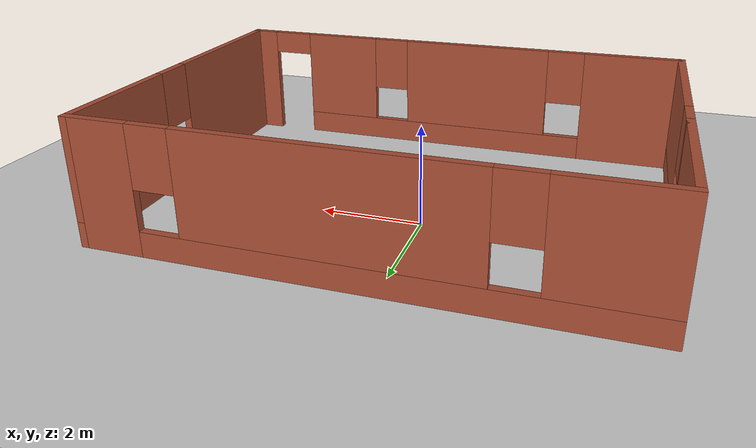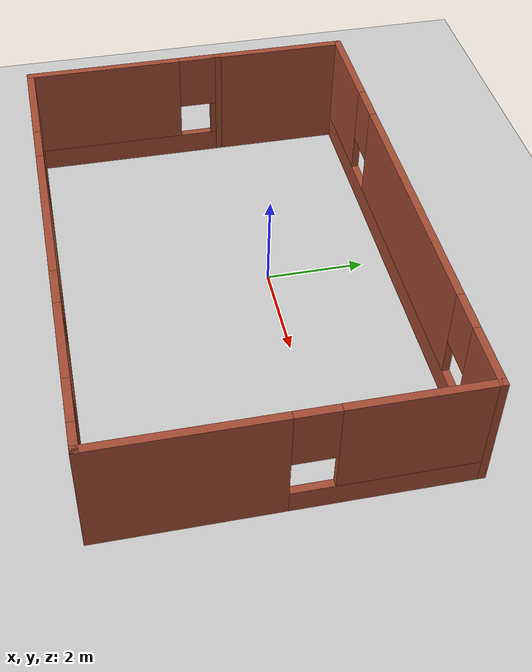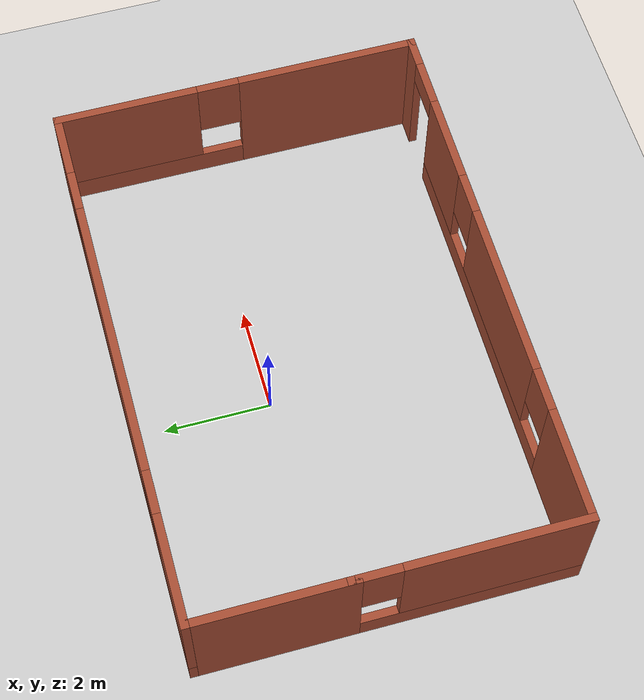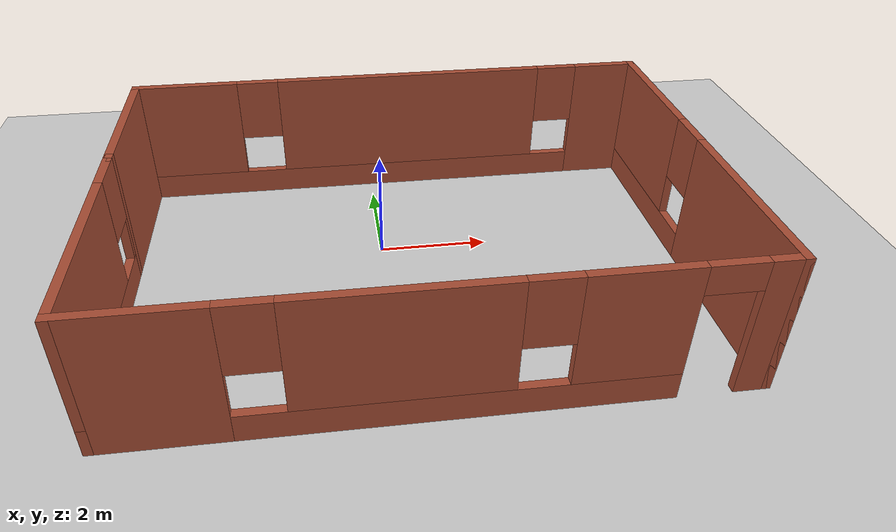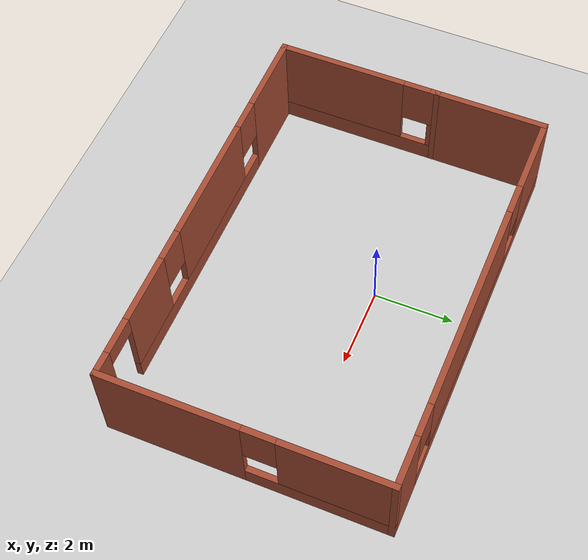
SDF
<sdf version="1.7">
 <world name="default">
  <light name="sun" type="directional">
   <pose>0 0 10 0 -0 0</pose>
   <diffuse>0.8 0.8 0.8 1</diffuse>
   <specular>0.2 0.2 0.2 1</specular>
   <attenuation>
    <range>1000</range>
    <constant>0.9</constant>
    <linear>0.01</linear>
    <quadratic>0.001</quadratic>
   </attenuation>
   <direction>-0.5 0.1 -0.9</direction>
   <spot><inner_angle>0</inner_angle><outer_angle>0</outer_angle><falloff>0</falloff></spot>
  </light>
  <model name="ground_plane">
   <static>1</static>
   <link name="link">
    <collision name="collision">
     <geometry><plane><normal>0 0 1</normal><size>100 100</size></plane></geometry>
     <surface><friction><ode><mu>100</mu><mu2>50</mu2></ode></friction></surface>
    </collision>
    <visual name="visual">
     <cast_shadows>0</cast_shadows>
     <geometry><plane><normal>0 0 1</normal><size>100 100</size></plane></geometry>
     <material>
      <script><uri>file://media/materials/scripts/gazebo.material</uri><name>Gazebo/Grey</name></script>
     </material>
    </visual>
   </link>
  </model>
  <gravity>0 0 -9.8</gravity>
  <magnetic_field>6e-06 2.3e-05 -4.2e-05</magnetic_field>
  <atmosphere type="adiabatic"/>
  <physics type="ode">
   <max_step_size>0.001</max_step_size>
   <real_time_factor>1</real_time_factor>
   <real_time_update_rate>1000</real_time_update_rate>
  </physics>
  <scene><ambient>0.4 0.4 0.4 1</ambient><background>0.7 0.7 0.7 1</background><shadows>1</shadows></scene>
  <audio><device>default</device></audio>
  <spherical_coordinates>
   <surface_model>EARTH_WGS84</surface_model>
   <latitude_deg>0</latitude_deg>
   <longitude_deg>0</longitude_deg>
   <elevation>0</elevation>
   <heading_deg>0</heading_deg>
  </spherical_coordinates>
  <model name="building_editor">
   <pose>0.48419 -0.86699 0 0 -0 0</pose>
   <link name="Wall_16">
    <pose>-5.05 -1.375 0 0 -0 -1.5708</pose>
    <visual name="Wall_16_Visual_0">
     <pose>-2.05619 0 1.25 0 -0 0</pose>
     <geometry><box><size>0.137612 0.15 2.5</size></box></geometry>
     <material>
      <script><uri>file://media/materials/scripts/gazebo.material</uri><name>Gazebo/Bricks</name></script>
      <ambient>1 1 1 1</ambient>
     </material>
     <meta><layer>0</layer></meta>
    </visual>
    <collision name="Wall_16_Collision_0">
     <geometry><box><size>0.137612 0.15 2.5</size></box></geometry>
     <pose>-2.05619 0 1.25 0 -0 0</pose>
    </collision>
    <visual name="Wall_16_Visual_1">
     <pose>0.068806 0 0.25 0 -0 0</pose>
     <geometry><box><size>4.11239 0.15 0.5</size></box></geometry>
     <material>
      <script><uri>file://media/materials/scripts/gazebo.material</uri><name>Gazebo/Bricks</name></script>
      <ambient>1 1 1 1</ambient>
     </material>
     <meta><layer>0</layer></meta>
    </visual>
    <collision name="Wall_16_Collision_1">
     <geometry><box><size>4.11239 0.15 0.5</size></box></geometry>
     <pose>0.068806 0 0.25 0 -0 0</pose>
    </collision>
    <visual name="Wall_16_Visual_2">
     <pose>0.468806 0 1.5 0 -0 0</pose>
     <geometry><box><size>3.31239 0.15 2</size></box></geometry>
     <material>
      <script><uri>file://media/materials/scripts/gazebo.material</uri><name>Gazebo/Bricks</name></script>
      <ambient>1 1 1 1</ambient>
     </material>
     <meta><layer>0</layer></meta>
    </visual>
    <collision name="Wall_16_Collision_2">
     <geometry><box><size>3.31239 0.15 2</size></box></geometry>
     <pose>0.468806 0 1.5 0 -0 0</pose>
    </collision>
    <visual name="Wall_16_Visual_3">
     <pose>-1.58739 0 1.9 0 -0 0</pose>
     <geometry><box><size>0.8 0.15 1.2</size></box></geometry>
     <material>
      <script><uri>file://media/materials/scripts/gazebo.material</uri><name>Gazebo/Bricks</name></script>
      <ambient>1 1 1 1</ambient>
     </material>
     <meta><layer>0</layer></meta>
    </visual>
    <collision name="Wall_16_Collision_3">
     <geometry><box><size>0.8 0.15 1.2</size></box></geometry>
     <pose>-1.58739 0 1.9 0 -0 0</pose>
    </collision>
   </link>
   <link name="Wall_17">
    <pose>0 -3.425 0 0 -0 0</pose>
    <visual name="Wall_17_Visual_0">
     <pose>-4.07314 0 1.25 0 -0 0</pose>
     <geometry><box><size>2.10371 0.15 2.5</size></box></geometry>
     <material>
      <script><uri>file://media/materials/scripts/gazebo.material</uri><name>Gazebo/Bricks</name></script>
      <ambient>1 1 1 1</ambient>
     </material>
     <meta><layer>0</layer></meta>
    </visual>
    <collision name="Wall_17_Collision_0">
     <geometry><box><size>2.10371 0.15 2.5</size></box></geometry>
     <pose>-4.07314 0 1.25 0 -0 0</pose>
    </collision>
    <visual name="Wall_17_Visual_1">
     <pose>4.81923 0 1.25 0 -0 0</pose>
     <geometry><box><size>0.61154 0.15 2.5</size></box></geometry>
     <material>
      <script><uri>file://media/materials/scripts/gazebo.material</uri><name>Gazebo/Bricks</name></script>
      <ambient>1 1 1 1</ambient>
     </material>
     <meta><layer>0</layer></meta>
    </visual>
    <collision name="Wall_17_Collision_1">
     <geometry><box><size>0.61154 0.15 2.5</size></box></geometry>
     <pose>4.81923 0 1.25 0 -0 0</pose>
    </collision>
    <visual name="Wall_17_Visual_2">
     <pose>0.296087 0 0.25 0 -0 0</pose>
     <geometry><box><size>6.63475 0.15 0.5</size></box></geometry>
     <material>
      <script><uri>file://media/materials/scripts/gazebo.material</uri><name>Gazebo/Bricks</name></script>
      <ambient>1 1 1 1</ambient>
     </material>
     <meta><layer>0</layer></meta>
    </visual>
    <collision name="Wall_17_Collision_2">
     <geometry><box><size>6.63475 0.15 0.5</size></box></geometry>
     <pose>0.296087 0 0.25 0 -0 0</pose>
    </collision>
    <visual name="Wall_17_Visual_3">
     <pose>-0.562662 0 1.5 0 -0 0</pose>
     <geometry><box><size>3.31725 0.15 2</size></box></geometry>
     <material>
      <script><uri>file://media/materials/scripts/gazebo.material</uri><name>Gazebo/Bricks</name></script>
      <ambient>1 1 1 1</ambient>
     </material>
     <meta><layer>0</layer></meta>
    </visual>
    <collision name="Wall_17_Collision_3">
     <geometry><box><size>3.31725 0.15 2</size></box></geometry>
     <pose>-0.562662 0 1.5 0 -0 0</pose>
    </collision>
    <visual name="Wall_17_Visual_4">
     <pose>2.75471 0 1.5 0 -0 0</pose>
     <geometry><box><size>1.7175 0.15 2</size></box></geometry>
     <material>
      <script><uri>file://media/materials/scripts/gazebo.material</uri><name>Gazebo/Bricks</name></script>
      <ambient>1 1 1 1</ambient>
     </material>
     <meta><layer>0</layer></meta>
    </visual>
    <collision name="Wall_17_Collision_4">
     <geometry><box><size>1.7175 0.15 2</size></box></geometry>
     <pose>2.75471 0 1.5 0 -0 0</pose>
    </collision>
    <visual name="Wall_17_Visual_5">
     <pose>-2.62129 0 1.9 0 -0 0</pose>
     <geometry><box><size>0.8 0.15 1.2</size></box></geometry>
     <material>
      <script><uri>file://media/materials/scripts/gazebo.material</uri><name>Gazebo/Bricks</name></script>
      <ambient>1 1 1 1</ambient>
     </material>
     <meta><layer>0</layer></meta>
    </visual>
    <collision name="Wall_17_Collision_5">
     <geometry><box><size>0.8 0.15 1.2</size></box></geometry>
     <pose>-2.62129 0 1.9 0 -0 0</pose>
    </collision>
    <visual name="Wall_17_Visual_6">
     <pose>1.49596 0 1.9 0 -0 0</pose>
     <geometry><box><size>0.8 0.15 1.2</size></box></geometry>
     <material>
      <script><uri>file://media/materials/scripts/gazebo.material</uri><name>Gazebo/Bricks</name></script>
      <ambient>1 1 1 1</ambient>
     </material>
     <meta><layer>0</layer></meta>
    </visual>
    <collision name="Wall_17_Collision_6">
     <geometry><box><size>0.8 0.15 1.2</size></box></geometry>
     <pose>1.49596 0 1.9 0 -0 0</pose>
    </collision>
    <visual name="Wall_17_Visual_7">
     <pose>4.06346 0 2.25 0 -0 0</pose>
     <geometry><box><size>0.9 0.15 0.5</size></box></geometry>
     <material>
      <script><uri>file://media/materials/scripts/gazebo.material</uri><name>Gazebo/Bricks</name></script>
      <ambient>1 1 1 1</ambient>
     </material>
     <meta><layer>0</layer></meta>
    </visual>
    <collision name="Wall_17_Collision_7">
     <geometry><box><size>0.9 0.15 0.5</size></box></geometry>
     <pose>4.06346 0 2.25 0 -0 0</pose>
    </collision>
   </link>
   <link name="Wall_18">
    <pose>5.05 0 0 0 -0 1.5708</pose>
    <visual name="Wall_18_Visual_0">
     <pose>-1.76285 0 1.25 0 -0 0</pose>
     <geometry><box><size>3.4743 0.15 2.5</size></box></geometry>
     <material>
      <script><uri>file://media/materials/scripts/gazebo.material</uri><name>Gazebo/Bricks</name></script>
      <ambient>1 1 1 1</ambient>
     </material>
     <meta><layer>0</layer></meta>
    </visual>
    <collision name="Wall_18_Collision_0">
     <geometry><box><size>3.4743 0.15 2.5</size></box></geometry>
     <pose>-1.76285 0 1.25 0 -0 0</pose>
    </collision>
    <visual name="Wall_18_Visual_1">
     <pose>1.73715 0 0.25 0 -0 0</pose>
     <geometry><box><size>3.5257 0.15 0.5</size></box></geometry>
     <material>
      <script><uri>file://media/materials/scripts/gazebo.material</uri><name>Gazebo/Bricks</name></script>
      <ambient>1 1 1 1</ambient>
     </material>
     <meta><layer>0</layer></meta>
    </visual>
    <collision name="Wall_18_Collision_1">
     <geometry><box><size>3.5257 0.15 0.5</size></box></geometry>
     <pose>1.73715 0 0.25 0 -0 0</pose>
    </collision>
    <visual name="Wall_18_Visual_2">
     <pose>2.13715 0 1.5 0 -0 0</pose>
     <geometry><box><size>2.7257 0.15 2</size></box></geometry>
     <material>
      <script><uri>file://media/materials/scripts/gazebo.material</uri><name>Gazebo/Bricks</name></script>
      <ambient>1 1 1 1</ambient>
     </material>
     <meta><layer>0</layer></meta>
    </visual>
    <collision name="Wall_18_Collision_2">
     <geometry><box><size>2.7257 0.15 2</size></box></geometry>
     <pose>2.13715 0 1.5 0 -0 0</pose>
    </collision>
    <visual name="Wall_18_Visual_3">
     <pose>0.374302 0 1.9 0 -0 0</pose>
     <geometry><box><size>0.8 0.15 1.2</size></box></geometry>
     <material>
      <script><uri>file://media/materials/scripts/gazebo.material</uri><name>Gazebo/Bricks</name></script>
      <ambient>1 1 1 1</ambient>
     </material>
     <meta><layer>0</layer></meta>
    </visual>
    <collision name="Wall_18_Collision_3">
     <geometry><box><size>0.8 0.15 1.2</size></box></geometry>
     <pose>0.374302 0 1.9 0 -0 0</pose>
    </collision>
   </link>
   <link name="Wall_19">
    <pose>0 3.425 0 0 -0 3.14159</pose>
    <visual name="Wall_19_Visual_0">
     <pose>-4.48197 0 1.25 0 -0 0</pose>
     <geometry><box><size>1.28607 0.15 2.5</size></box></geometry>
     <material>
      <script><uri>file://media/materials/scripts/gazebo.material</uri><name>Gazebo/Bricks</name></script>
      <ambient>1 1 1 1</ambient>
     </material>
     <meta><layer>0</layer></meta>
    </visual>
    <collision name="Wall_19_Collision_0">
     <geometry><box><size>1.28607 0.15 2.5</size></box></geometry>
     <pose>-4.48197 0 1.25 0 -0 0</pose>
    </collision>
    <visual name="Wall_19_Visual_1">
     <pose>0.643033 0 0.25 0 -0 0</pose>
     <geometry><box><size>8.96393 0.15 0.5</size></box></geometry>
     <material>
      <script><uri>file://media/materials/scripts/gazebo.material</uri><name>Gazebo/Bricks</name></script>
      <ambient>1 1 1 1</ambient>
     </material>
     <meta><layer>0</layer></meta>
    </visual>
    <collision name="Wall_19_Collision_1">
     <geometry><box><size>8.96393 0.15 0.5</size></box></geometry>
     <pose>0.643033 0 0.25 0 -0 0</pose>
    </collision>
    <visual name="Wall_19_Visual_2">
     <pose>-0.374128 0 1.5 0 -0 0</pose>
     <geometry><box><size>5.32961 0.15 2</size></box></geometry>
     <material>
      <script><uri>file://media/materials/scripts/gazebo.material</uri><name>Gazebo/Bricks</name></script>
      <ambient>1 1 1 1</ambient>
     </material>
     <meta><layer>0</layer></meta>
    </visual>
    <collision name="Wall_19_Collision_2">
     <geometry><box><size>5.32961 0.15 2</size></box></geometry>
     <pose>-0.374128 0 1.5 0 -0 0</pose>
    </collision>
    <visual name="Wall_19_Visual_3">
     <pose>4.10784 0 1.5 0 -0 0</pose>
     <geometry><box><size>2.03432 0.15 2</size></box></geometry>
     <material>
      <script><uri>file://media/materials/scripts/gazebo.material</uri><name>Gazebo/Bricks</name></script>
      <ambient>1 1 1 1</ambient>
     </material>
     <meta><layer>0</layer></meta>
    </visual>
    <collision name="Wall_19_Collision_3">
     <geometry><box><size>2.03432 0.15 2</size></box></geometry>
     <pose>4.10784 0 1.5 0 -0 0</pose>
    </collision>
    <visual name="Wall_19_Visual_4">
     <pose>-3.43893 0 1.9 0 -0 0</pose>
     <geometry><box><size>0.8 0.15 1.2</size></box></geometry>
     <material>
      <script><uri>file://media/materials/scripts/gazebo.material</uri><name>Gazebo/Bricks</name></script>
      <ambient>1 1 1 1</ambient>
     </material>
     <meta><layer>0</layer></meta>
    </visual>
    <collision name="Wall_19_Collision_4">
     <geometry><box><size>0.8 0.15 1.2</size></box></geometry>
     <pose>-3.43893 0 1.9 0 -0 0</pose>
    </collision>
    <visual name="Wall_19_Visual_5">
     <pose>2.69068 0 1.9 0 -0 0</pose>
     <geometry><box><size>0.8 0.15 1.2</size></box></geometry>
     <material>
      <script><uri>file://media/materials/scripts/gazebo.material</uri><name>Gazebo/Bricks</name></script>
      <ambient>1 1 1 1</ambient>
     </material>
     <meta><layer>0</layer></meta>
    </visual>
    <collision name="Wall_19_Collision_5">
     <geometry><box><size>0.8 0.15 1.2</size></box></geometry>
     <pose>2.69068 0 1.9 0 -0 0</pose>
    </collision>
   </link>
   <link name="Wall_20">
    <collision name="Wall_20_Collision">
     <geometry><box><size>3 0.15 2.5</size></box></geometry>
     <pose>0 0 1.25 0 -0 0</pose>
    </collision>
    <visual name="Wall_20_Visual">
     <pose>0 0 1.25 0 -0 0</pose>
     <geometry><box><size>3 0.15 2.5</size></box></geometry>
     <material>
      <script><uri>file://media/materials/scripts/gazebo.material</uri><name>Gazebo/Bricks</name></script>
      <ambient>1 1 1 1</ambient>
     </material>
     <meta><layer>0</layer></meta>
    </visual>
    <pose>-5.05 2 0 0 -0 -1.5708</pose>
   </link>
   <static>1</static>
  </model>
  <light name="user_spot_light_0" type="spot">
   <pose>2.08665 0.73034 1 0 -0 0</pose>
   <diffuse>0.5 0.5 0.5 1</diffuse>
   <specular>0.1 0.1 0.1 1</specular>
   <direction>0 0 -1</direction>
   <attenuation>
    <range>20</range>
    <constant>0.5</constant>
    <linear>0.01</linear>
    <quadratic>0.001</quadratic>
   </attenuation>
   <cast_shadows>0</cast_shadows>
   <spot><inner_angle>0.6</inner_angle><outer_angle>1</outer_angle><falloff>1</falloff></spot>
  </light>
  <light name="user_directional_light_0" type="directional">
   <pose>4.89418 9.2141 1 0 -0 0</pose>
   <diffuse>0.5 0.5 0.5 1</diffuse>
   <specular>0.1 0.1 0.1 1</specular>
   <direction>0.1 0.1 -0.9</direction>
   <attenuation>
    <range>20</range>
    <constant>0.5</constant>
    <linear>0.01</linear>
    <quadratic>0.001</quadratic>
   </attenuation>
  </light>
 </world>
</sdf>
